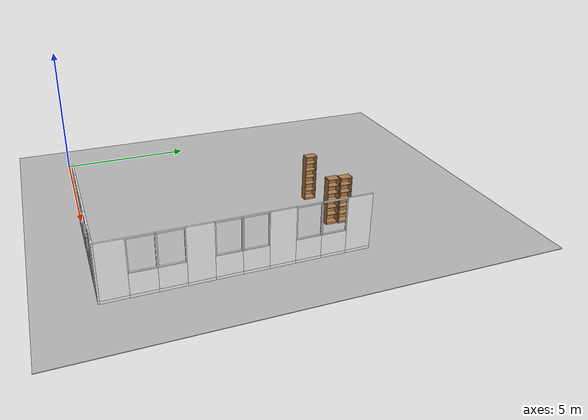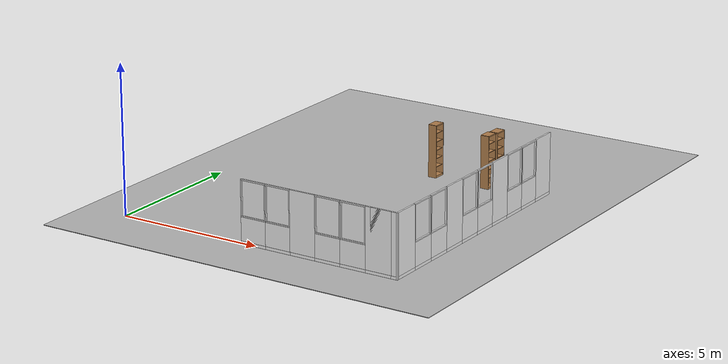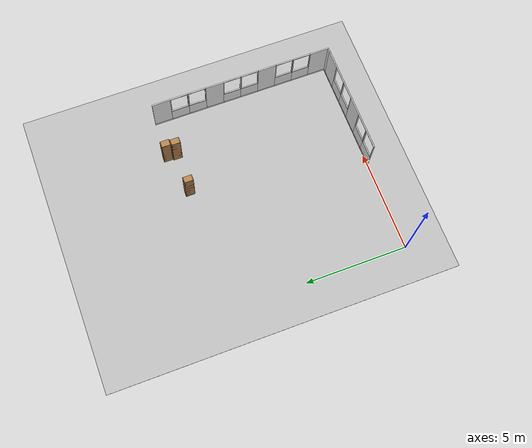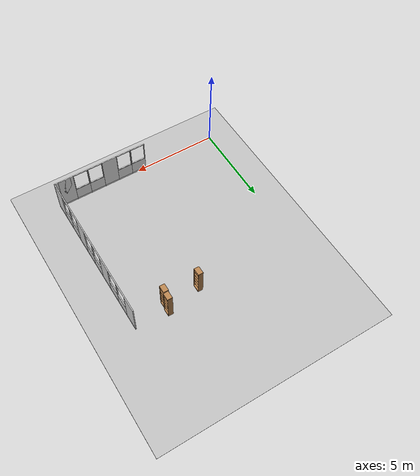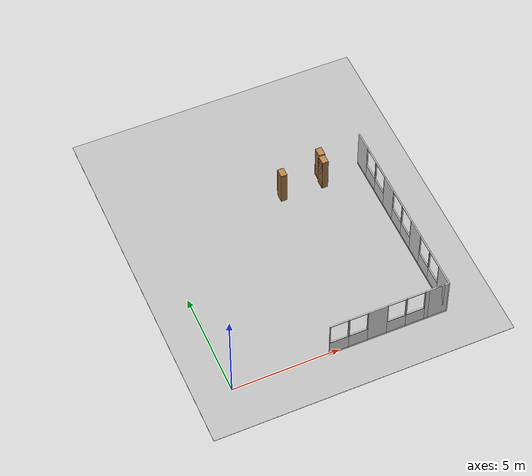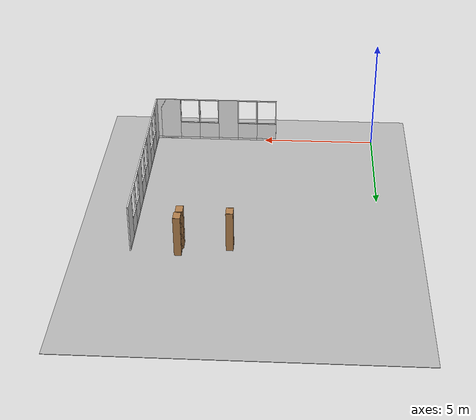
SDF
<sdf version="1.6">
 <world name="robocup_apartment">
  <model name="gplane">
   <pose>5.0375 6.59 0 0 -0 0</pose>
   <link name="body">
    <collision name="gplane_coll">
     <geometry><plane><normal>0 0 1</normal><size>10.075 13.18</size></plane></geometry>
     <surface><contact><ode><kp>1e+06</kp><kd>1</kd></ode></contact></surface>
     <laser_retro>2000</laser_retro>
    </collision>
    <visual name="gplane_vis">
     <geometry><plane><normal>0 0 1</normal><size>10.075 13.18</size></plane></geometry>
     <material>
      <script>
       <uri>model://base_materials/carpet/scripts</uri>
       <uri>model://base_materials/carpet/textures</uri>
       <name>carpet/carpet01</name>
      </script>
     </material>
     <cast_shadows>0</cast_shadows>
    </visual>
    <velocity_decay><linear>0</linear><angular>0</angular></velocity_decay>
   </link>
   <static>1</static>
  </model>
  <model name="wall_x06y00">
   <link name="link">
    <inertial>
     <mass>50</mass>
     <inertia><ixx>1</ixx><ixy>0</ixy><ixz>0</ixz><iyy>1</iyy><iyz>0</iyz><izz>1</izz></inertia>
    </inertial>
    <visual name="bottom_frame">
     <pose>0 0 0.05 0 -0 0</pose>
     <geometry><box><size>0.055 0.9 0.1</size></box></geometry>
     <material>
      <script><uri>model://base_materials/color/scripts</uri><name>hsr_color/white</name></script>
     </material>
    </visual>
    <visual name="wall">
     <pose>0 0 0.4875 0 -0 0</pose>
     <geometry><box><size>0.055 0.9 0.775</size></box></geometry>
     <material>
      <script>
       <uri>model://base_materials/wall/scripts</uri>
       <uri>model://base_materials/wall/textures</uri>
       <name>wall/white_noise</name>
      </script>
     </material>
    </visual>
    <visual name="center_frame">
     <pose>0 0 0.8925 0 -0 0</pose>
     <geometry><box><size>0.055 0.9 0.035</size></box></geometry>
     <material>
      <script><uri>model://base_materials/color/scripts</uri><name>hsr_color/white</name></script>
     </material>
    </visual>
    <visual name="right_frame">
     <pose>0 0.4325 1.48 0 -0 0</pose>
     <geometry><box><size>0.055 0.035 1.14</size></box></geometry>
     <material>
      <script><uri>model://base_materials/color/scripts</uri><name>hsr_color/white</name></script>
     </material>
    </visual>
    <visual name="left_frame">
     <pose>0 -0.4325 1.48 0 -0 0</pose>
     <geometry><box><size>0.055 0.035 1.14</size></box></geometry>
     <material>
      <script><uri>model://base_materials/color/scripts</uri><name>hsr_color/white</name></script>
     </material>
    </visual>
    <visual name="top_frame">
     <pose>0 0 2.07 0 -0 0</pose>
     <geometry><box><size>0.055 0.9 0.04</size></box></geometry>
     <material>
      <script><uri>model://base_materials/color/scripts</uri><name>hsr_color/white</name></script>
     </material>
    </visual>
    <velocity_decay><linear>0</linear><angular>0</angular></velocity_decay>
   </link>
   <static>1</static>
   <pose>4.95 -0.0275 0 0 -0 1.5708</pose>
  </model>
  <model name="wall_x07y00">
   <link name="link">
    <inertial>
     <mass>50</mass>
     <inertia><ixx>1</ixx><ixy>0</ixy><ixz>0</ixz><iyy>1</iyy><iyz>0</iyz><izz>1</izz></inertia>
    </inertial>
    <visual name="bottom_frame">
     <pose>0 0 0.05 0 -0 0</pose>
     <geometry><box><size>0.055 0.9 0.1</size></box></geometry>
     <material>
      <script><uri>model://base_materials/color/scripts</uri><name>hsr_color/white</name></script>
     </material>
    </visual>
    <visual name="wall">
     <pose>0 0 0.4875 0 -0 0</pose>
     <geometry><box><size>0.055 0.9 0.775</size></box></geometry>
     <material>
      <script>
       <uri>model://base_materials/wall/scripts</uri>
       <uri>model://base_materials/wall/textures</uri>
       <name>wall/white_noise</name>
      </script>
     </material>
    </visual>
    <visual name="center_frame">
     <pose>0 0 0.8925 0 -0 0</pose>
     <geometry><box><size>0.055 0.9 0.035</size></box></geometry>
     <material>
      <script><uri>model://base_materials/color/scripts</uri><name>hsr_color/white</name></script>
     </material>
    </visual>
    <visual name="right_frame">
     <pose>0 0.4325 1.48 0 -0 0</pose>
     <geometry><box><size>0.055 0.035 1.14</size></box></geometry>
     <material>
      <script><uri>model://base_materials/color/scripts</uri><name>hsr_color/white</name></script>
     </material>
    </visual>
    <visual name="left_frame">
     <pose>0 -0.4325 1.48 0 -0 0</pose>
     <geometry><box><size>0.055 0.035 1.14</size></box></geometry>
     <material>
      <script><uri>model://base_materials/color/scripts</uri><name>hsr_color/white</name></script>
     </material>
    </visual>
    <visual name="top_frame">
     <pose>0 0 2.07 0 -0 0</pose>
     <geometry><box><size>0.055 0.9 0.04</size></box></geometry>
     <material>
      <script><uri>model://base_materials/color/scripts</uri><name>hsr_color/white</name></script>
     </material>
    </visual>
    <velocity_decay><linear>0</linear><angular>0</angular></velocity_decay>
   </link>
   <static>1</static>
   <pose>5.85 -0.0275 0 0 -0 1.5708</pose>
  </model>
  <model name="wall_x08y00">
   <link name="link">
    <inertial>
     <mass>50</mass>
     <inertia><ixx>1</ixx><ixy>0</ixy><ixz>0</ixz><iyy>1</iyy><iyz>0</iyz><izz>1</izz></inertia>
    </inertial>
    <visual name="bottom_frame">
     <pose>0 0 0.05 0 -0 0</pose>
     <geometry><box><size>0.055 0.9 0.1</size></box></geometry>
     <material>
      <script><uri>model://base_materials/color/scripts</uri><name>hsr_color/white</name></script>
     </material>
    </visual>
    <visual name="wall">
     <pose>0 0 1.095 0 -0 0</pose>
     <geometry><box><size>0.055 0.9 1.99</size></box></geometry>
     <material>
      <script>
       <uri>model://base_materials/wall/scripts</uri>
       <uri>model://base_materials/wall/textures</uri>
       <name>wall/white_noise</name>
      </script>
     </material>
    </visual>
    <velocity_decay><linear>0</linear><angular>0</angular></velocity_decay>
   </link>
   <static>1</static>
   <pose>6.75 -0.0275 0 0 -0 1.5708</pose>
  </model>
  <model name="wall_x09y00">
   <link name="link">
    <inertial>
     <mass>50</mass>
     <inertia><ixx>1</ixx><ixy>0</ixy><ixz>0</ixz><iyy>1</iyy><iyz>0</iyz><izz>1</izz></inertia>
    </inertial>
    <visual name="bottom_frame">
     <pose>0 0 0.05 0 -0 0</pose>
     <geometry><box><size>0.055 0.9 0.1</size></box></geometry>
     <material>
      <script><uri>model://base_materials/color/scripts</uri><name>hsr_color/white</name></script>
     </material>
    </visual>
    <visual name="wall">
     <pose>0 0 0.4875 0 -0 0</pose>
     <geometry><box><size>0.055 0.9 0.775</size></box></geometry>
     <material>
      <script>
       <uri>model://base_materials/wall/scripts</uri>
       <uri>model://base_materials/wall/textures</uri>
       <name>wall/white_noise</name>
      </script>
     </material>
    </visual>
    <visual name="center_frame">
     <pose>0 0 0.8925 0 -0 0</pose>
     <geometry><box><size>0.055 0.9 0.035</size></box></geometry>
     <material>
      <script><uri>model://base_materials/color/scripts</uri><name>hsr_color/white</name></script>
     </material>
    </visual>
    <visual name="right_frame">
     <pose>0 0.4325 1.48 0 -0 0</pose>
     <geometry><box><size>0.055 0.035 1.14</size></box></geometry>
     <material>
      <script><uri>model://base_materials/color/scripts</uri><name>hsr_color/white</name></script>
     </material>
    </visual>
    <visual name="left_frame">
     <pose>0 -0.4325 1.48 0 -0 0</pose>
     <geometry><box><size>0.055 0.035 1.14</size></box></geometry>
     <material>
      <script><uri>model://base_materials/color/scripts</uri><name>hsr_color/white</name></script>
     </material>
    </visual>
    <visual name="top_frame">
     <pose>0 0 2.07 0 -0 0</pose>
     <geometry><box><size>0.055 0.9 0.04</size></box></geometry>
     <material>
      <script><uri>model://base_materials/color/scripts</uri><name>hsr_color/white</name></script>
     </material>
    </visual>
    <velocity_decay><linear>0</linear><angular>0</angular></velocity_decay>
   </link>
   <static>1</static>
   <pose>7.65 -0.0275 0 0 -0 1.5708</pose>
  </model>
  <model name="wall_x10y00">
   <link name="link">
    <inertial>
     <mass>50</mass>
     <inertia><ixx>1</ixx><ixy>0</ixy><ixz>0</ixz><iyy>1</iyy><iyz>0</iyz><izz>1</izz></inertia>
    </inertial>
    <visual name="bottom_frame">
     <pose>0 0 0.05 0 -0 0</pose>
     <geometry><box><size>0.055 0.9 0.1</size></box></geometry>
     <material>
      <script><uri>model://base_materials/color/scripts</uri><name>hsr_color/white</name></script>
     </material>
    </visual>
    <visual name="wall">
     <pose>0 0 0.4875 0 -0 0</pose>
     <geometry><box><size>0.055 0.9 0.775</size></box></geometry>
     <material>
      <script>
       <uri>model://base_materials/wall/scripts</uri>
       <uri>model://base_materials/wall/textures</uri>
       <name>wall/white_noise</name>
      </script>
     </material>
    </visual>
    <visual name="center_frame">
     <pose>0 0 0.8925 0 -0 0</pose>
     <geometry><box><size>0.055 0.9 0.035</size></box></geometry>
     <material>
      <script><uri>model://base_materials/color/scripts</uri><name>hsr_color/white</name></script>
     </material>
    </visual>
    <visual name="right_frame">
     <pose>0 0.4325 1.48 0 -0 0</pose>
     <geometry><box><size>0.055 0.035 1.14</size></box></geometry>
     <material>
      <script><uri>model://base_materials/color/scripts</uri><name>hsr_color/white</name></script>
     </material>
    </visual>
    <visual name="left_frame">
     <pose>0 -0.4325 1.48 0 -0 0</pose>
     <geometry><box><size>0.055 0.035 1.14</size></box></geometry>
     <material>
      <script><uri>model://base_materials/color/scripts</uri><name>hsr_color/white</name></script>
     </material>
    </visual>
    <visual name="top_frame">
     <pose>0 0 2.07 0 -0 0</pose>
     <geometry><box><size>0.055 0.9 0.04</size></box></geometry>
     <material>
      <script><uri>model://base_materials/color/scripts</uri><name>hsr_color/white</name></script>
     </material>
    </visual>
    <velocity_decay><linear>0</linear><angular>0</angular></velocity_decay>
   </link>
   <static>1</static>
   <pose>8.55 -0.0275 0 0 -0 1.5708</pose>
  </model>
  <model name="wall_x11y00">
   <link name="link">
    <inertial>
     <mass>50</mass>
     <inertia><ixx>1</ixx><ixy>0</ixy><ixz>0</ixz><iyy>1</iyy><iyz>0</iyz><izz>1</izz></inertia>
    </inertial>
    <visual name="bottom_frame">
     <pose>0 0 0.05 0 -0 0</pose>
     <geometry><box><size>0.055 0.9 0.1</size></box></geometry>
     <material>
      <script><uri>model://base_materials/color/scripts</uri><name>hsr_color/white</name></script>
     </material>
    </visual>
    <visual name="wall">
     <pose>0 0 1.095 0 -0 0</pose>
     <geometry><box><size>0.055 0.9 1.99</size></box></geometry>
     <material>
      <script>
       <uri>model://base_materials/wall/scripts</uri>
       <uri>model://base_materials/wall/textures</uri>
       <name>wall/white_noise</name>
      </script>
     </material>
    </visual>
    <velocity_decay><linear>0</linear><angular>0</angular></velocity_decay>
   </link>
   <static>1</static>
   <pose>9.45 -0.0275 0 0 -0 1.5708</pose>
  </model>
  <model name="wall_x12y00">
   <link name="link">
    <inertial>
     <mass>50</mass>
     <inertia><ixx>1</ixx><ixy>0</ixy><ixz>0</ixz><iyy>1</iyy><iyz>0</iyz><izz>1</izz></inertia>
    </inertial>
    <visual name="bottom_frame">
     <pose>0 0 0.05 0 -0 0</pose>
     <geometry><box><size>0.055 0.9 0.1</size></box></geometry>
     <material>
      <script><uri>model://base_materials/color/scripts</uri><name>hsr_color/white</name></script>
     </material>
    </visual>
    <visual name="wall">
     <pose>0 0 1.095 0 -0 0</pose>
     <geometry><box><size>0.055 0.9 1.99</size></box></geometry>
     <material>
      <script>
       <uri>model://base_materials/wall/scripts</uri>
       <uri>model://base_materials/wall/textures</uri>
       <name>wall/white_noise</name>
      </script>
     </material>
    </visual>
    <velocity_decay><linear>0</linear><angular>0</angular></velocity_decay>
   </link>
   <static>1</static>
   <pose>9.625 -0.0275 0 0 -0 1.5708</pose>
  </model>
  <model name="wall_x13y00">
   <link name="link">
    <inertial>
     <mass>50</mass>
     <inertia><ixx>1</ixx><ixy>0</ixy><ixz>0</ixz><iyy>1</iyy><iyz>0</iyz><izz>1</izz></inertia>
    </inertial>
    <visual name="_frame">
     <pose>0 0 1.045 0 -0 0</pose>
     <geometry><box><size>0.055 0.055 2.09</size></box></geometry>
     <material>
      <script><uri>model://base_materials/color/scripts</uri><name>hsr_color/white</name></script>
     </material>
    </visual>
    <velocity_decay><linear>0</linear><angular>0</angular></velocity_decay>
   </link>
   <static>1</static>
   <pose>10.1025 -0.0275 0 0 -0 0</pose>
  </model>
  <model name="wall_x13y01">
   <link name="link">
    <inertial>
     <mass>50</mass>
     <inertia><ixx>1</ixx><ixy>0</ixy><ixz>0</ixz><iyy>1</iyy><iyz>0</iyz><izz>1</izz></inertia>
    </inertial>
    <visual name="bottom_frame">
     <pose>0 0 0.05 0 -0 0</pose>
     <geometry><box><size>0.055 0.9 0.1</size></box></geometry>
     <material>
      <script><uri>model://base_materials/color/scripts</uri><name>hsr_color/white</name></script>
     </material>
    </visual>
    <visual name="wall">
     <pose>0 0 1.095 0 -0 0</pose>
     <geometry><box><size>0.055 0.9 1.99</size></box></geometry>
     <material>
      <script>
       <uri>model://base_materials/wall/scripts</uri>
       <uri>model://base_materials/wall/textures</uri>
       <name>wall/white_noise</name>
      </script>
     </material>
    </visual>
    <velocity_decay><linear>0</linear><angular>0</angular></velocity_decay>
   </link>
   <static>1</static>
   <pose>10.1025 0.45 0 0 -0 0</pose>
  </model>
  <model name="wall_x13y02">
   <link name="link">
    <inertial>
     <mass>50</mass>
     <inertia><ixx>1</ixx><ixy>0</ixy><ixz>0</ixz><iyy>1</iyy><iyz>0</iyz><izz>1</izz></inertia>
    </inertial>
    <visual name="bottom_frame">
     <pose>0 0 0.05 0 -0 0</pose>
     <geometry><box><size>0.055 0.9 0.1</size></box></geometry>
     <material>
      <script><uri>model://base_materials/color/scripts</uri><name>hsr_color/white</name></script>
     </material>
    </visual>
    <visual name="wall">
     <pose>0 0 0.4875 0 -0 0</pose>
     <geometry><box><size>0.055 0.9 0.775</size></box></geometry>
     <material>
      <script>
       <uri>model://base_materials/wall/scripts</uri>
       <uri>model://base_materials/wall/textures</uri>
       <name>wall/white_noise</name>
      </script>
     </material>
    </visual>
    <visual name="center_frame">
     <pose>0 0 0.8925 0 -0 0</pose>
     <geometry><box><size>0.055 0.9 0.035</size></box></geometry>
     <material>
      <script><uri>model://base_materials/color/scripts</uri><name>hsr_color/white</name></script>
     </material>
    </visual>
    <visual name="right_frame">
     <pose>0 0.4325 1.48 0 -0 0</pose>
     <geometry><box><size>0.055 0.035 1.14</size></box></geometry>
     <material>
      <script><uri>model://base_materials/color/scripts</uri><name>hsr_color/white</name></script>
     </material>
    </visual>
    <visual name="left_frame">
     <pose>0 -0.4325 1.48 0 -0 0</pose>
     <geometry><box><size>0.055 0.035 1.14</size></box></geometry>
     <material>
      <script><uri>model://base_materials/color/scripts</uri><name>hsr_color/white</name></script>
     </material>
    </visual>
    <visual name="top_frame">
     <pose>0 0 2.07 0 -0 0</pose>
     <geometry><box><size>0.055 0.9 0.04</size></box></geometry>
     <material>
      <script><uri>model://base_materials/color/scripts</uri><name>hsr_color/white</name></script>
     </material>
    </visual>
    <velocity_decay><linear>0</linear><angular>0</angular></velocity_decay>
   </link>
   <static>1</static>
   <pose>10.1025 1.35 0 0 -0 0</pose>
  </model>
  <model name="wall_x13y03">
   <link name="link">
    <inertial>
     <mass>50</mass>
     <inertia><ixx>1</ixx><ixy>0</ixy><ixz>0</ixz><iyy>1</iyy><iyz>0</iyz><izz>1</izz></inertia>
    </inertial>
    <visual name="bottom_frame">
     <pose>0 0 0.05 0 -0 0</pose>
     <geometry><box><size>0.055 0.9 0.1</size></box></geometry>
     <material>
      <script><uri>model://base_materials/color/scripts</uri><name>hsr_color/white</name></script>
     </material>
    </visual>
    <visual name="wall">
     <pose>0 0 0.4875 0 -0 0</pose>
     <geometry><box><size>0.055 0.9 0.775</size></box></geometry>
     <material>
      <script>
       <uri>model://base_materials/wall/scripts</uri>
       <uri>model://base_materials/wall/textures</uri>
       <name>wall/white_noise</name>
      </script>
     </material>
    </visual>
    <visual name="center_frame">
     <pose>0 0 0.8925 0 -0 0</pose>
     <geometry><box><size>0.055 0.9 0.035</size></box></geometry>
     <material>
      <script><uri>model://base_materials/color/scripts</uri><name>hsr_color/white</name></script>
     </material>
    </visual>
    <visual name="right_frame">
     <pose>0 0.4325 1.48 0 -0 0</pose>
     <geometry><box><size>0.055 0.035 1.14</size></box></geometry>
     <material>
      <script><uri>model://base_materials/color/scripts</uri><name>hsr_color/white</name></script>
     </material>
    </visual>
    <visual name="left_frame">
     <pose>0 -0.4325 1.48 0 -0 0</pose>
     <geometry><box><size>0.055 0.035 1.14</size></box></geometry>
     <material>
      <script><uri>model://base_materials/color/scripts</uri><name>hsr_color/white</name></script>
     </material>
    </visual>
    <visual name="top_frame">
     <pose>0 0 2.07 0 -0 0</pose>
     <geometry><box><size>0.055 0.9 0.04</size></box></geometry>
     <material>
      <script><uri>model://base_materials/color/scripts</uri><name>hsr_color/white</name></script>
     </material>
    </visual>
    <velocity_decay><linear>0</linear><angular>0</angular></velocity_decay>
   </link>
   <static>1</static>
   <pose>10.1025 2.25 0 0 -0 0</pose>
  </model>
  <model name="wall_x13y04">
   <link name="link">
    <inertial>
     <mass>50</mass>
     <inertia><ixx>1</ixx><ixy>0</ixy><ixz>0</ixz><iyy>1</iyy><iyz>0</iyz><izz>1</izz></inertia>
    </inertial>
    <visual name="bottom_frame">
     <pose>0 0 0.05 0 -0 0</pose>
     <geometry><box><size>0.055 0.9 0.1</size></box></geometry>
     <material>
      <script><uri>model://base_materials/color/scripts</uri><name>hsr_color/white</name></script>
     </material>
    </visual>
    <visual name="wall">
     <pose>0 0 1.095 0 -0 0</pose>
     <geometry><box><size>0.055 0.9 1.99</size></box></geometry>
     <material>
      <script>
       <uri>model://base_materials/wall/scripts</uri>
       <uri>model://base_materials/wall/textures</uri>
       <name>wall/white_noise</name>
      </script>
     </material>
    </visual>
    <velocity_decay><linear>0</linear><angular>0</angular></velocity_decay>
   </link>
   <static>1</static>
   <pose>10.1025 3.15 0 0 -0 0</pose>
  </model>
  <model name="wall_x13y05">
   <link name="link">
    <inertial>
     <mass>50</mass>
     <inertia><ixx>1</ixx><ixy>0</ixy><ixz>0</ixz><iyy>1</iyy><iyz>0</iyz><izz>1</izz></inertia>
    </inertial>
    <visual name="bottom_frame">
     <pose>0 0 0.05 0 -0 0</pose>
     <geometry><box><size>0.055 0.9 0.1</size></box></geometry>
     <material>
      <script><uri>model://base_materials/color/scripts</uri><name>hsr_color/white</name></script>
     </material>
    </visual>
    <visual name="wall">
     <pose>0 0 0.4875 0 -0 0</pose>
     <geometry><box><size>0.055 0.9 0.775</size></box></geometry>
     <material>
      <script>
       <uri>model://base_materials/wall/scripts</uri>
       <uri>model://base_materials/wall/textures</uri>
       <name>wall/white_noise</name>
      </script>
     </material>
    </visual>
    <visual name="center_frame">
     <pose>0 0 0.8925 0 -0 0</pose>
     <geometry><box><size>0.055 0.9 0.035</size></box></geometry>
     <material>
      <script><uri>model://base_materials/color/scripts</uri><name>hsr_color/white</name></script>
     </material>
    </visual>
    <visual name="right_frame">
     <pose>0 0.4325 1.48 0 -0 0</pose>
     <geometry><box><size>0.055 0.035 1.14</size></box></geometry>
     <material>
      <script><uri>model://base_materials/color/scripts</uri><name>hsr_color/white</name></script>
     </material>
    </visual>
    <visual name="left_frame">
     <pose>0 -0.4325 1.48 0 -0 0</pose>
     <geometry><box><size>0.055 0.035 1.14</size></box></geometry>
     <material>
      <script><uri>model://base_materials/color/scripts</uri><name>hsr_color/white</name></script>
     </material>
    </visual>
    <visual name="top_frame">
     <pose>0 0 2.07 0 -0 0</pose>
     <geometry><box><size>0.055 0.9 0.04</size></box></geometry>
     <material>
      <script><uri>model://base_materials/color/scripts</uri><name>hsr_color/white</name></script>
     </material>
    </visual>
    <velocity_decay><linear>0</linear><angular>0</angular></velocity_decay>
   </link>
   <static>1</static>
   <pose>10.1025 4.05 0 0 -0 0</pose>
  </model>
  <model name="wall_x13y06">
   <link name="link">
    <inertial>
     <mass>50</mass>
     <inertia><ixx>1</ixx><ixy>0</ixy><ixz>0</ixz><iyy>1</iyy><iyz>0</iyz><izz>1</izz></inertia>
    </inertial>
    <visual name="bottom_frame">
     <pose>0 0 0.05 0 -0 0</pose>
     <geometry><box><size>0.055 0.9 0.1</size></box></geometry>
     <material>
      <script><uri>model://base_materials/color/scripts</uri><name>hsr_color/white</name></script>
     </material>
    </visual>
    <visual name="wall">
     <pose>0 0 0.4875 0 -0 0</pose>
     <geometry><box><size>0.055 0.9 0.775</size></box></geometry>
     <material>
      <script>
       <uri>model://base_materials/wall/scripts</uri>
       <uri>model://base_materials/wall/textures</uri>
       <name>wall/white_noise</name>
      </script>
     </material>
    </visual>
    <visual name="center_frame">
     <pose>0 0 0.8925 0 -0 0</pose>
     <geometry><box><size>0.055 0.9 0.035</size></box></geometry>
     <material>
      <script><uri>model://base_materials/color/scripts</uri><name>hsr_color/white</name></script>
     </material>
    </visual>
    <visual name="right_frame">
     <pose>0 0.4325 1.48 0 -0 0</pose>
     <geometry><box><size>0.055 0.035 1.14</size></box></geometry>
     <material>
      <script><uri>model://base_materials/color/scripts</uri><name>hsr_color/white</name></script>
     </material>
    </visual>
    <visual name="left_frame">
     <pose>0 -0.4325 1.48 0 -0 0</pose>
     <geometry><box><size>0.055 0.035 1.14</size></box></geometry>
     <material>
      <script><uri>model://base_materials/color/scripts</uri><name>hsr_color/white</name></script>
     </material>
    </visual>
    <visual name="top_frame">
     <pose>0 0 2.07 0 -0 0</pose>
     <geometry><box><size>0.055 0.9 0.04</size></box></geometry>
     <material>
      <script><uri>model://base_materials/color/scripts</uri><name>hsr_color/white</name></script>
     </material>
    </visual>
    <velocity_decay><linear>0</linear><angular>0</angular></velocity_decay>
   </link>
   <static>1</static>
   <pose>10.1025 4.95 0 0 -0 0</pose>
  </model>
  <model name="wall_x13y07">
   <link name="link">
    <inertial>
     <mass>50</mass>
     <inertia><ixx>1</ixx><ixy>0</ixy><ixz>0</ixz><iyy>1</iyy><iyz>0</iyz><izz>1</izz></inertia>
    </inertial>
    <visual name="bottom_frame">
     <pose>0 0 0.05 0 -0 0</pose>
     <geometry><box><size>0.055 0.9 0.1</size></box></geometry>
     <material>
      <script><uri>model://base_materials/color/scripts</uri><name>hsr_color/white</name></script>
     </material>
    </visual>
    <visual name="wall">
     <pose>0 0 1.095 0 -0 0</pose>
     <geometry><box><size>0.055 0.9 1.99</size></box></geometry>
     <material>
      <script>
       <uri>model://base_materials/wall/scripts</uri>
       <uri>model://base_materials/wall/textures</uri>
       <name>wall/white_noise</name>
      </script>
     </material>
    </visual>
    <velocity_decay><linear>0</linear><angular>0</angular></velocity_decay>
   </link>
   <static>1</static>
   <pose>10.1025 5.85 0 0 -0 0</pose>
  </model>
  <model name="wall_x13y08">
   <link name="link">
    <inertial>
     <mass>50</mass>
     <inertia><ixx>1</ixx><ixy>0</ixy><ixz>0</ixz><iyy>1</iyy><iyz>0</iyz><izz>1</izz></inertia>
    </inertial>
    <visual name="bottom_frame">
     <pose>0 0 0.05 0 -0 0</pose>
     <geometry><box><size>0.055 0.9 0.1</size></box></geometry>
     <material>
      <script><uri>model://base_materials/color/scripts</uri><name>hsr_color/white</name></script>
     </material>
    </visual>
    <visual name="wall">
     <pose>0 0 0.4875 0 -0 0</pose>
     <geometry><box><size>0.055 0.9 0.775</size></box></geometry>
     <material>
      <script>
       <uri>model://base_materials/wall/scripts</uri>
       <uri>model://base_materials/wall/textures</uri>
       <name>wall/white_noise</name>
      </script>
     </material>
    </visual>
    <visual name="center_frame">
     <pose>0 0 0.8925 0 -0 0</pose>
     <geometry><box><size>0.055 0.9 0.035</size></box></geometry>
     <material>
      <script><uri>model://base_materials/color/scripts</uri><name>hsr_color/white</name></script>
     </material>
    </visual>
    <visual name="right_frame">
     <pose>0 0.4325 1.48 0 -0 0</pose>
     <geometry><box><size>0.055 0.035 1.14</size></box></geometry>
     <material>
      <script><uri>model://base_materials/color/scripts</uri><name>hsr_color/white</name></script>
     </material>
    </visual>
    <visual name="left_frame">
     <pose>0 -0.4325 1.48 0 -0 0</pose>
     <geometry><box><size>0.055 0.035 1.14</size></box></geometry>
     <material>
      <script><uri>model://base_materials/color/scripts</uri><name>hsr_color/white</name></script>
     </material>
    </visual>
    <visual name="top_frame">
     <pose>0 0 2.07 0 -0 0</pose>
     <geometry><box><size>0.055 0.9 0.04</size></box></geometry>
     <material>
      <script><uri>model://base_materials/color/scripts</uri><name>hsr_color/white</name></script>
     </material>
    </visual>
    <velocity_decay><linear>0</linear><angular>0</angular></velocity_decay>
   </link>
   <static>1</static>
   <pose>10.1025 6.75 0 0 -0 0</pose>
  </model>
  <model name="wall_x13y09">
   <link name="link">
    <inertial>
     <mass>50</mass>
     <inertia><ixx>1</ixx><ixy>0</ixy><ixz>0</ixz><iyy>1</iyy><iyz>0</iyz><izz>1</izz></inertia>
    </inertial>
    <visual name="bottom_frame">
     <pose>0 0 0.05 0 -0 0</pose>
     <geometry><box><size>0.055 0.9 0.1</size></box></geometry>
     <material>
      <script><uri>model://base_materials/color/scripts</uri><name>hsr_color/white</name></script>
     </material>
    </visual>
    <visual name="wall">
     <pose>0 0 0.4875 0 -0 0</pose>
     <geometry><box><size>0.055 0.9 0.775</size></box></geometry>
     <material>
      <script>
       <uri>model://base_materials/wall/scripts</uri>
       <uri>model://base_materials/wall/textures</uri>
       <name>wall/white_noise</name>
      </script>
     </material>
    </visual>
    <visual name="center_frame">
     <pose>0 0 0.8925 0 -0 0</pose>
     <geometry><box><size>0.055 0.9 0.035</size></box></geometry>
     <material>
      <script><uri>model://base_materials/color/scripts</uri><name>hsr_color/white</name></script>
     </material>
    </visual>
    <visual name="right_frame">
     <pose>0 0.4325 1.48 0 -0 0</pose>
     <geometry><box><size>0.055 0.035 1.14</size></box></geometry>
     <material>
      <script><uri>model://base_materials/color/scripts</uri><name>hsr_color/white</name></script>
     </material>
    </visual>
    <visual name="left_frame">
     <pose>0 -0.4325 1.48 0 -0 0</pose>
     <geometry><box><size>0.055 0.035 1.14</size></box></geometry>
     <material>
      <script><uri>model://base_materials/color/scripts</uri><name>hsr_color/white</name></script>
     </material>
    </visual>
    <visual name="top_frame">
     <pose>0 0 2.07 0 -0 0</pose>
     <geometry><box><size>0.055 0.9 0.04</size></box></geometry>
     <material>
      <script><uri>model://base_materials/color/scripts</uri><name>hsr_color/white</name></script>
     </material>
    </visual>
    <velocity_decay><linear>0</linear><angular>0</angular></velocity_decay>
   </link>
   <static>1</static>
   <pose>10.1025 7.65 0 0 -0 0</pose>
  </model>
  <model name="wall_x13y10">
   <link name="link">
    <inertial>
     <mass>50</mass>
     <inertia><ixx>1</ixx><ixy>0</ixy><ixz>0</ixz><iyy>1</iyy><iyz>0</iyz><izz>1</izz></inertia>
    </inertial>
    <visual name="bottom_frame">
     <pose>0 0 0.05 0 -0 0</pose>
     <geometry><box><size>0.055 0.9 0.1</size></box></geometry>
     <material>
      <script><uri>model://base_materials/color/scripts</uri><name>hsr_color/white</name></script>
     </material>
    </visual>
    <visual name="wall">
     <pose>0 0 1.095 0 -0 0</pose>
     <geometry><box><size>0.055 0.9 1.99</size></box></geometry>
     <material>
      <script>
       <uri>model://base_materials/wall/scripts</uri>
       <uri>model://base_materials/wall/textures</uri>
       <name>wall/white_noise</name>
      </script>
     </material>
    </visual>
    <velocity_decay><linear>0</linear><angular>0</angular></velocity_decay>
   </link>
   <static>1</static>
   <pose>10.1025 8.55 0 0 -0 0</pose>
  </model>
  <model name="lawn_garden">
   <link name="link">
    <inertial>
     <mass>10</mass>
     <inertia><ixx>1</ixx><ixy>0</ixy><ixz>0</ixz><iyy>1</iyy><iyz>0</iyz><izz>1</izz></inertia>
    </inertial>
    <visual name="lawn_garden">
     <pose>0 0 -0.011 0 -0 0</pose>
     <geometry><box><size>14.075 17.185 0.02</size></box></geometry>
     <material>
      <script>
       <uri>model://base_materials/lawn/scripts/lawn.material</uri>
       <uri>model://base_materials/lawn/textures</uri>
       <name>lawn/lawn01</name>
      </script>
     </material>
    </visual>
    <collision name="collision_lawn_garden">
     <pose>0 0 -0.011 0 -0 0</pose>
     <geometry><box><size>14.075 17.185 0.02</size></box></geometry>
    </collision>
    <velocity_decay><linear>0</linear><angular>0</angular></velocity_decay>
   </link>
   <static>1</static>
   <pose>5.375 6.59 0 0 -0 0</pose>
  </model>
  <model name="high_shelf05_clone_18">
   <link name="link">
    <inertial>
     <mass>5</mass>
     <inertia><ixx>1</ixx><ixy>0</ixy><ixz>0</ixz><iyy>1</iyy><iyz>0</iyz><izz>1</izz></inertia>
    </inertial>
    <visual name="left_board">
     <pose>-0.1475 0.009 0.898 0 -0 0</pose>
     <geometry><box><size>0.295 0.018 1.796</size></box></geometry>
     <material>
      <script>
       <uri>model://base_materials/wood/scripts</uri>
       <uri>model://base_materials/wood/textures</uri>
       <name>base_materials/light_wood</name>
      </script>
     </material>
    </visual>
    <collision name="collision_left_board">
     <pose>-0.1475 0.009 0.898 0 -0 0</pose>
     <geometry><box><size>0.295 0.018 1.796</size></box></geometry>
    </collision>
    <visual name="right_board">
     <pose>-0.1475 0.441 0.898 0 -0 0</pose>
     <geometry><box><size>0.295 0.018 1.796</size></box></geometry>
     <material>
      <script>
       <uri>model://base_materials/wood/scripts</uri>
       <uri>model://base_materials/wood/textures</uri>
       <name>base_materials/light_wood</name>
      </script>
     </material>
    </visual>
    <collision name="collision_right_board">
     <pose>-0.1475 0.441 0.898 0 -0 0</pose>
     <geometry><box><size>0.295 0.018 1.796</size></box></geometry>
    </collision>
    <visual name="top_board">
     <pose>-0.1475 0.225 1.7825 0 -0 0</pose>
     <geometry><box><size>0.295 0.414 0.035</size></box></geometry>
     <material>
      <script>
       <uri>model://base_materials/wood/scripts</uri>
       <uri>model://base_materials/wood/textures</uri>
       <name>base_materials/light_wood</name>
      </script>
     </material>
    </visual>
    <collision name="collision_top_board">
     <pose>-0.1475 0.225 1.7825 0 -0 0</pose>
     <geometry><box><size>0.295 0.414 0.035</size></box></geometry>
    </collision>
    <visual name="1st_shelf">
     <pose>-0.162 0.225 1.51 0 -0 0</pose>
     <geometry><box><size>0.266 0.414 0.018</size></box></geometry>
     <material>
      <script>
       <uri>model://base_materials/wood/scripts</uri>
       <uri>model://base_materials/wood/textures</uri>
       <name>base_materials/light_wood</name>
      </script>
     </material>
    </visual>
    <collision name="collision_1st_shelf">
     <pose>-0.162 0.225 1.51 0 -0 0</pose>
     <geometry><box><size>0.266 0.414 0.018</size></box></geometry>
    </collision>
    <visual name="2nd_shelf">
     <pose>-0.162 0.225 1.22 0 -0 0</pose>
     <geometry><box><size>0.266 0.414 0.018</size></box></geometry>
     <material>
      <script>
       <uri>model://base_materials/wood/scripts</uri>
       <uri>model://base_materials/wood/textures</uri>
       <name>base_materials/light_wood</name>
      </script>
     </material>
    </visual>
    <collision name="collision_2nd_shelf">
     <pose>-0.162 0.225 1.22 0 -0 0</pose>
     <geometry><box><size>0.266 0.414 0.018</size></box></geometry>
    </collision>
    <visual name="3rd_shelf">
     <pose>-0.162 0.225 0.93 0 -0 0</pose>
     <geometry><box><size>0.266 0.414 0.018</size></box></geometry>
     <material>
      <script>
       <uri>model://base_materials/wood/scripts</uri>
       <uri>model://base_materials/wood/textures</uri>
       <name>base_materials/light_wood</name>
      </script>
     </material>
    </visual>
    <collision name="collision_3rd_shelf">
     <pose>-0.162 0.225 0.93 0 -0 0</pose>
     <geometry><box><size>0.266 0.414 0.018</size></box></geometry>
    </collision>
    <visual name="4th_shelf">
     <pose>-0.162 0.225 0.65 0 -0 0</pose>
     <geometry><box><size>0.266 0.414 0.018</size></box></geometry>
     <material>
      <script>
       <uri>model://base_materials/wood/scripts</uri>
       <uri>model://base_materials/wood/textures</uri>
       <name>base_materials/light_wood</name>
      </script>
     </material>
    </visual>
    <collision name="collision_4th_shelf">
     <pose>-0.162 0.225 0.65 0 -0 0</pose>
     <geometry><box><size>0.266 0.414 0.018</size></box></geometry>
    </collision>
    <visual name="5th_shelf">
     <pose>-0.162 0.225 0.36 0 -0 0</pose>
     <geometry><box><size>0.266 0.414 0.018</size></box></geometry>
     <material>
      <script>
       <uri>model://base_materials/wood/scripts</uri>
       <uri>model://base_materials/wood/textures</uri>
       <name>base_materials/light_wood</name>
      </script>
     </material>
    </visual>
    <collision name="collision_5th_shelf">
     <pose>-0.162 0.225 0.36 0 -0 0</pose>
     <geometry><box><size>0.266 0.414 0.018</size></box></geometry>
    </collision>
    <visual name="bottom_board">
     <pose>-0.1475 0.225 0.035 0 -0 0</pose>
     <geometry><box><size>0.295 0.414 0.07</size></box></geometry>
     <material>
      <script>
       <uri>model://base_materials/wood/scripts</uri>
       <uri>model://base_materials/wood/textures</uri>
       <name>base_materials/light_wood</name>
      </script>
     </material>
    </visual>
    <collision name="collision_bottom_board">
     <pose>-0.1475 0.225 0.035 0 -0 0</pose>
     <geometry><box><size>0.295 0.414 0.07</size></box></geometry>
    </collision>
    <visual name="back_board">
     <pose>-0.286 0.225 0.898 0 -0 0</pose>
     <geometry><box><size>0.018 0.414 1.796</size></box></geometry>
     <material>
      <script>
       <uri>model://base_materials/wood/scripts</uri>
       <uri>model://base_materials/wood/textures</uri>
       <name>base_materials/light_wood</name>
      </script>
     </material>
    </visual>
    <collision name="collision_back_board">
     <pose>-0.286 0.225 0.898 0 -0 0</pose>
     <geometry><box><size>0.018 0.414 1.796</size></box></geometry>
    </collision>
    <velocity_decay><linear>0</linear><angular>0</angular></velocity_decay>
   </link>
   <static>1</static>
   <pose>6.25249 8.36369 0 0 -0 0</pose>
  </model>
  <model name="high_shelf05_clone_23">
   <link name="link">
    <inertial>
     <mass>5</mass>
     <inertia><ixx>1</ixx><ixy>0</ixy><ixz>0</ixz><iyy>1</iyy><iyz>0</iyz><izz>1</izz></inertia>
    </inertial>
    <visual name="left_board">
     <pose>-0.1475 0.009 0.898 0 -0 0</pose>
     <geometry><box><size>0.295 0.018 1.796</size></box></geometry>
     <material>
      <script>
       <uri>model://base_materials/wood/scripts</uri>
       <uri>model://base_materials/wood/textures</uri>
       <name>base_materials/light_wood</name>
      </script>
     </material>
    </visual>
    <collision name="collision_left_board">
     <pose>-0.1475 0.009 0.898 0 -0 0</pose>
     <geometry><box><size>0.295 0.018 1.796</size></box></geometry>
    </collision>
    <visual name="right_board">
     <pose>-0.1475 0.441 0.898 0 -0 0</pose>
     <geometry><box><size>0.295 0.018 1.796</size></box></geometry>
     <material>
      <script>
       <uri>model://base_materials/wood/scripts</uri>
       <uri>model://base_materials/wood/textures</uri>
       <name>base_materials/light_wood</name>
      </script>
     </material>
    </visual>
    <collision name="collision_right_board">
     <pose>-0.1475 0.441 0.898 0 -0 0</pose>
     <geometry><box><size>0.295 0.018 1.796</size></box></geometry>
    </collision>
    <visual name="top_board">
     <pose>-0.1475 0.225 1.7825 0 -0 0</pose>
     <geometry><box><size>0.295 0.414 0.035</size></box></geometry>
     <material>
      <script>
       <uri>model://base_materials/wood/scripts</uri>
       <uri>model://base_materials/wood/textures</uri>
       <name>base_materials/light_wood</name>
      </script>
     </material>
    </visual>
    <collision name="collision_top_board">
     <pose>-0.1475 0.225 1.7825 0 -0 0</pose>
     <geometry><box><size>0.295 0.414 0.035</size></box></geometry>
    </collision>
    <visual name="1st_shelf">
     <pose>-0.162 0.225 1.51 0 -0 0</pose>
     <geometry><box><size>0.266 0.414 0.018</size></box></geometry>
     <material>
      <script>
       <uri>model://base_materials/wood/scripts</uri>
       <uri>model://base_materials/wood/textures</uri>
       <name>base_materials/light_wood</name>
      </script>
     </material>
    </visual>
    <collision name="collision_1st_shelf">
     <pose>-0.162 0.225 1.51 0 -0 0</pose>
     <geometry><box><size>0.266 0.414 0.018</size></box></geometry>
    </collision>
    <visual name="2nd_shelf">
     <pose>-0.162 0.225 1.22 0 -0 0</pose>
     <geometry><box><size>0.266 0.414 0.018</size></box></geometry>
     <material>
      <script>
       <uri>model://base_materials/wood/scripts</uri>
       <uri>model://base_materials/wood/textures</uri>
       <name>base_materials/light_wood</name>
      </script>
     </material>
    </visual>
    <collision name="collision_2nd_shelf">
     <pose>-0.162 0.225 1.22 0 -0 0</pose>
     <geometry><box><size>0.266 0.414 0.018</size></box></geometry>
    </collision>
    <visual name="3rd_shelf">
     <pose>-0.162 0.225 0.93 0 -0 0</pose>
     <geometry><box><size>0.266 0.414 0.018</size></box></geometry>
     <material>
      <script>
       <uri>model://base_materials/wood/scripts</uri>
       <uri>model://base_materials/wood/textures</uri>
       <name>base_materials/light_wood</name>
      </script>
     </material>
    </visual>
    <collision name="collision_3rd_shelf">
     <pose>-0.162 0.225 0.93 0 -0 0</pose>
     <geometry><box><size>0.266 0.414 0.018</size></box></geometry>
    </collision>
    <visual name="4th_shelf">
     <pose>-0.162 0.225 0.65 0 -0 0</pose>
     <geometry><box><size>0.266 0.414 0.018</size></box></geometry>
     <material>
      <script>
       <uri>model://base_materials/wood/scripts</uri>
       <uri>model://base_materials/wood/textures</uri>
       <name>base_materials/light_wood</name>
      </script>
     </material>
    </visual>
    <collision name="collision_4th_shelf">
     <pose>-0.162 0.225 0.65 0 -0 0</pose>
     <geometry><box><size>0.266 0.414 0.018</size></box></geometry>
    </collision>
    <visual name="5th_shelf">
     <pose>-0.162 0.225 0.36 0 -0 0</pose>
     <geometry><box><size>0.266 0.414 0.018</size></box></geometry>
     <material>
      <script>
       <uri>model://base_materials/wood/scripts</uri>
       <uri>model://base_materials/wood/textures</uri>
       <name>base_materials/light_wood</name>
      </script>
     </material>
    </visual>
    <collision name="collision_5th_shelf">
     <pose>-0.162 0.225 0.36 0 -0 0</pose>
     <geometry><box><size>0.266 0.414 0.018</size></box></geometry>
    </collision>
    <visual name="bottom_board">
     <pose>-0.1475 0.225 0.035 0 -0 0</pose>
     <geometry><box><size>0.295 0.414 0.07</size></box></geometry>
     <material>
      <script>
       <uri>model://base_materials/wood/scripts</uri>
       <uri>model://base_materials/wood/textures</uri>
       <name>base_materials/light_wood</name>
      </script>
     </material>
    </visual>
    <collision name="collision_bottom_board">
     <pose>-0.1475 0.225 0.035 0 -0 0</pose>
     <geometry><box><size>0.295 0.414 0.07</size></box></geometry>
    </collision>
    <visual name="back_board">
     <pose>-0.286 0.225 0.898 0 -0 0</pose>
     <geometry><box><size>0.018 0.414 1.796</size></box></geometry>
     <material>
      <script>
       <uri>model://base_materials/wood/scripts</uri>
       <uri>model://base_materials/wood/textures</uri>
       <name>base_materials/light_wood</name>
      </script>
     </material>
    </visual>
    <collision name="collision_back_board">
     <pose>-0.286 0.225 0.898 0 -0 0</pose>
     <geometry><box><size>0.018 0.414 1.796</size></box></geometry>
    </collision>
    <velocity_decay><linear>0</linear><angular>0</angular></velocity_decay>
   </link>
   <static>1</static>
   <pose>8.30965 8.77953 0 0 -0 0</pose>
  </model>
  <model name="high_shelf05_clone_24">
   <link name="link">
    <inertial>
     <mass>5</mass>
     <inertia><ixx>1</ixx><ixy>0</ixy><ixz>0</ixz><iyy>1</iyy><iyz>0</iyz><izz>1</izz></inertia>
    </inertial>
    <visual name="left_board">
     <pose>-0.1475 0.009 0.898 0 -0 0</pose>
     <geometry><box><size>0.295 0.018 1.796</size></box></geometry>
     <material>
      <script>
       <uri>model://base_materials/wood/scripts</uri>
       <uri>model://base_materials/wood/textures</uri>
       <name>base_materials/light_wood</name>
      </script>
     </material>
    </visual>
    <collision name="collision_left_board">
     <pose>-0.1475 0.009 0.898 0 -0 0</pose>
     <geometry><box><size>0.295 0.018 1.796</size></box></geometry>
    </collision>
    <visual name="right_board">
     <pose>-0.1475 0.441 0.898 0 -0 0</pose>
     <geometry><box><size>0.295 0.018 1.796</size></box></geometry>
     <material>
      <script>
       <uri>model://base_materials/wood/scripts</uri>
       <uri>model://base_materials/wood/textures</uri>
       <name>base_materials/light_wood</name>
      </script>
     </material>
    </visual>
    <collision name="collision_right_board">
     <pose>-0.1475 0.441 0.898 0 -0 0</pose>
     <geometry><box><size>0.295 0.018 1.796</size></box></geometry>
    </collision>
    <visual name="top_board">
     <pose>-0.1475 0.225 1.7825 0 -0 0</pose>
     <geometry><box><size>0.295 0.414 0.035</size></box></geometry>
     <material>
      <script>
       <uri>model://base_materials/wood/scripts</uri>
       <uri>model://base_materials/wood/textures</uri>
       <name>base_materials/light_wood</name>
      </script>
     </material>
    </visual>
    <collision name="collision_top_board">
     <pose>-0.1475 0.225 1.7825 0 -0 0</pose>
     <geometry><box><size>0.295 0.414 0.035</size></box></geometry>
    </collision>
    <visual name="1st_shelf">
     <pose>-0.162 0.225 1.51 0 -0 0</pose>
     <geometry><box><size>0.266 0.414 0.018</size></box></geometry>
     <material>
      <script>
       <uri>model://base_materials/wood/scripts</uri>
       <uri>model://base_materials/wood/textures</uri>
       <name>base_materials/light_wood</name>
      </script>
     </material>
    </visual>
    <collision name="collision_1st_shelf">
     <pose>-0.162 0.225 1.51 0 -0 0</pose>
     <geometry><box><size>0.266 0.414 0.018</size></box></geometry>
    </collision>
    <visual name="2nd_shelf">
     <pose>-0.162 0.225 1.22 0 -0 0</pose>
     <geometry><box><size>0.266 0.414 0.018</size></box></geometry>
     <material>
      <script>
       <uri>model://base_materials/wood/scripts</uri>
       <uri>model://base_materials/wood/textures</uri>
       <name>base_materials/light_wood</name>
      </script>
     </material>
    </visual>
    <collision name="collision_2nd_shelf">
     <pose>-0.162 0.225 1.22 0 -0 0</pose>
     <geometry><box><size>0.266 0.414 0.018</size></box></geometry>
    </collision>
    <visual name="3rd_shelf">
     <pose>-0.162 0.225 0.93 0 -0 0</pose>
     <geometry><box><size>0.266 0.414 0.018</size></box></geometry>
     <material>
      <script>
       <uri>model://base_materials/wood/scripts</uri>
       <uri>model://base_materials/wood/textures</uri>
       <name>base_materials/light_wood</name>
      </script>
     </material>
    </visual>
    <collision name="collision_3rd_shelf">
     <pose>-0.162 0.225 0.93 0 -0 0</pose>
     <geometry><box><size>0.266 0.414 0.018</size></box></geometry>
    </collision>
    <visual name="4th_shelf">
     <pose>-0.162 0.225 0.65 0 -0 0</pose>
     <geometry><box><size>0.266 0.414 0.018</size></box></geometry>
     <material>
      <script>
       <uri>model://base_materials/wood/scripts</uri>
       <uri>model://base_materials/wood/textures</uri>
       <name>base_materials/light_wood</name>
      </script>
     </material>
    </visual>
    <collision name="collision_4th_shelf">
     <pose>-0.162 0.225 0.65 0 -0 0</pose>
     <geometry><box><size>0.266 0.414 0.018</size></box></geometry>
    </collision>
    <visual name="5th_shelf">
     <pose>-0.162 0.225 0.36 0 -0 0</pose>
     <geometry><box><size>0.266 0.414 0.018</size></box></geometry>
     <material>
      <script>
       <uri>model://base_materials/wood/scripts</uri>
       <uri>model://base_materials/wood/textures</uri>
       <name>base_materials/light_wood</name>
      </script>
     </material>
    </visual>
    <collision name="collision_5th_shelf">
     <pose>-0.162 0.225 0.36 0 -0 0</pose>
     <geometry><box><size>0.266 0.414 0.018</size></box></geometry>
    </collision>
    <visual name="bottom_board">
     <pose>-0.1475 0.225 0.035 0 -0 0</pose>
     <geometry><box><size>0.295 0.414 0.07</size></box></geometry>
     <material>
      <script>
       <uri>model://base_materials/wood/scripts</uri>
       <uri>model://base_materials/wood/textures</uri>
       <name>base_materials/light_wood</name>
      </script>
     </material>
    </visual>
    <collision name="collision_bottom_board">
     <pose>-0.1475 0.225 0.035 0 -0 0</pose>
     <geometry><box><size>0.295 0.414 0.07</size></box></geometry>
    </collision>
    <visual name="back_board">
     <pose>-0.286 0.225 0.898 0 -0 0</pose>
     <geometry><box><size>0.018 0.414 1.796</size></box></geometry>
     <material>
      <script>
       <uri>model://base_materials/wood/scripts</uri>
       <uri>model://base_materials/wood/textures</uri>
       <name>base_materials/light_wood</name>
      </script>
     </material>
    </visual>
    <collision name="collision_back_board">
     <pose>-0.286 0.225 0.898 0 -0 0</pose>
     <geometry><box><size>0.018 0.414 1.796</size></box></geometry>
    </collision>
    <velocity_decay><linear>0</linear><angular>0</angular></velocity_decay>
   </link>
   <static>1</static>
   <pose>8.25948 8.31433 0 0 -0 0</pose>
  </model>
 </world>
</sdf>
